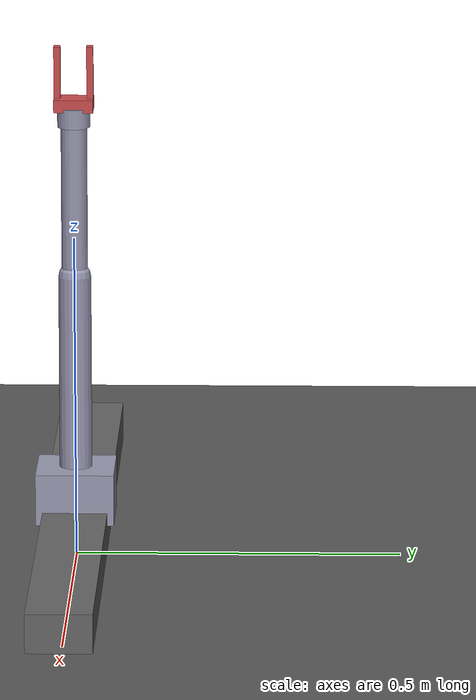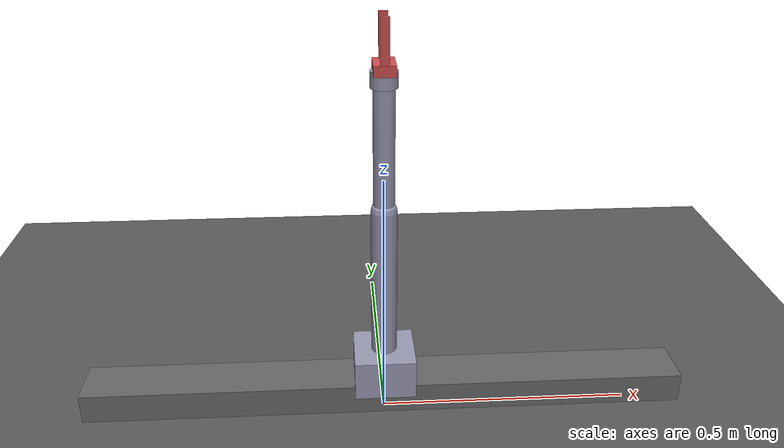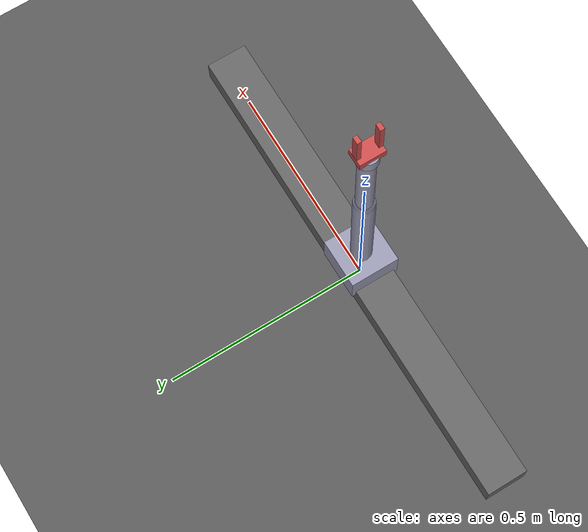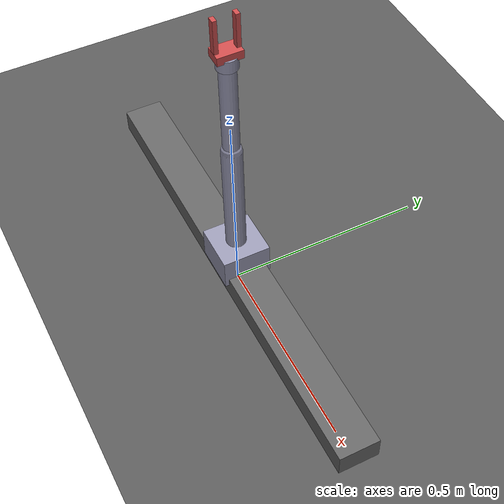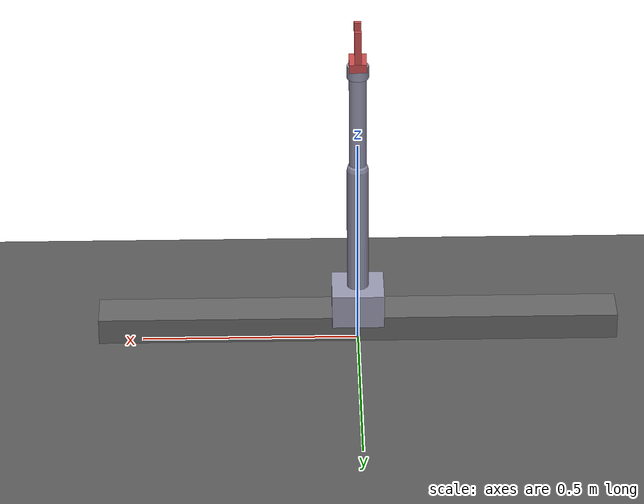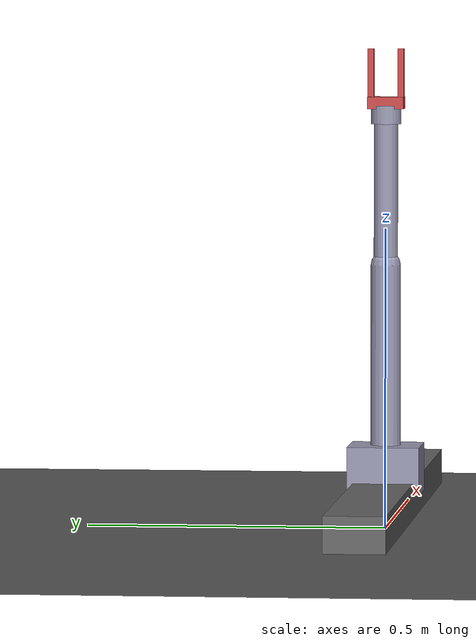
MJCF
<mujoco model="rover_arm">
  <compiler angle="radian"/>

  <option gravity="0 0 -9.81" timestep="0.01"/>

  <default>
    <joint damping="1.0" armature="0.1"/>
    <geom condim="3" friction="1 0.5 0.01"/>
  </default>

  <asset>
    <texture type="2d" name="grid" builtin="checker" rgb1="0.3 0.3 0.3" rgb2="0.4 0.4 0.4" width="512" height="512"/>
    <material name="grid_mat" texture="grid" texrepeat="8 8" reflectance="0.2"/>
    <material name="arm_mat" rgba="0.6 0.6 0.7 1"/>
    <material name="claw_mat" rgba="0.8 0.3 0.3 1"/>
  </asset>

  <worldbody>
    <light pos="0 0 3" dir="0 0 -1" diffuse="1 1 1" specular="0.3 0.3 0.3"/>
    <light pos="1 1 2" dir="-0.5 -0.5 -1" diffuse="0.5 0.5 0.5"/>

    <geom type="plane" size="2 2 0.01" material="grid_mat"/>

    <!-- Base rail: runs along X axis -->
    <body name="base" pos="0 0 0.05">
      <geom type="box" size="0.6 0.05 0.03" rgba="0.4 0.4 0.4 1" mass="5"/>

      <!-- Sliding carriage: slides along X -->
      <body name="carriage" pos="0 0 0.05">
        <joint name="base_slide" type="slide" axis="1 0 0" range="-0.5 0.5" damping="2.0"/>
        <geom type="box" size="0.06 0.06 0.04" material="arm_mat" mass="2"/>

        <!-- Upper arm: extends upward along Z, shoulder rotates around X
             so the arm swings in the Y-Z plane (perpendicular to the slide) -->
        <body name="upper_arm" pos="0 0 0.04">
          <joint name="shoulder" type="hinge" axis="1 0 0" range="-1.5708 1.5708" damping="1.5"/>
          <geom type="capsule" fromto="0 0 0 0 0 0.3" size="0.025" material="arm_mat" mass="1"/>

          <!-- Forearm: continues along Z, elbow also rotates around X -->
          <body name="forearm" pos="0 0 0.3">
            <joint name="elbow" type="hinge" axis="1 0 0" range="0 2.6" damping="1.5"/>
            <geom type="capsule" fromto="0 0 0 0 0 0.25" size="0.02" material="arm_mat" mass="0.8"/>

            <!-- Wrist: twist around the arm's long axis (Z) -->
            <body name="wrist" pos="0 0 0.25">
              <joint name="wrist_twist" type="hinge" axis="0 0 1" range="-3.14159 3.14159" damping="0.5"/>
              <geom type="cylinder" size="0.025 0.015" material="arm_mat" mass="0.3"/>

              <!-- Claw base -->
              <body name="claw_base" pos="0 0 0.02">
                <geom type="box" size="0.02 0.03 0.01" material="claw_mat" mass="0.2"/>

                <!-- Left finger -->
                <body name="finger_left" pos="0 -0.025 0.01">
                  <joint name="claw" type="hinge" axis="1 0 0" range="0 1.2" damping="0.5"/>
                  <geom type="box" size="0.008 0.005 0.04" pos="0 0 0.04" material="claw_mat" mass="0.1"/>
                </body>

                <!-- Right finger (mirrors left) -->
                <body name="finger_right" pos="0 0.025 0.01">
                  <joint name="claw_right" type="hinge" axis="-1 0 0" range="0 1.2" damping="0.5"/>
                  <geom type="box" size="0.008 0.005 0.04" pos="0 0 0.04" material="claw_mat" mass="0.1"/>
                </body>
              </body>
            </body>
          </body>
        </body>
      </body>
    </body>
  </worldbody>

  <equality>
    <joint joint1="claw" joint2="claw_right" polycoef="0 1 0 0 0"/>
  </equality>

  <actuator>
    <motor name="base_slide_motor" joint="base_slide" gear="50" ctrllimited="true" ctrlrange="-1 1"/>
    <motor name="shoulder_motor" joint="shoulder" gear="30" ctrllimited="true" ctrlrange="-1 1"/>
    <motor name="elbow_motor" joint="elbow" gear="20" ctrllimited="true" ctrlrange="-1 1"/>
    <motor name="wrist_twist_motor" joint="wrist_twist" gear="5" ctrllimited="true" ctrlrange="-1 1"/>
    <motor name="claw_motor" joint="claw" gear="5" ctrllimited="true" ctrlrange="-1 1"/>
  </actuator>
</mujoco>
